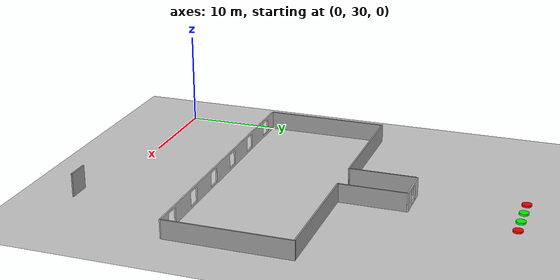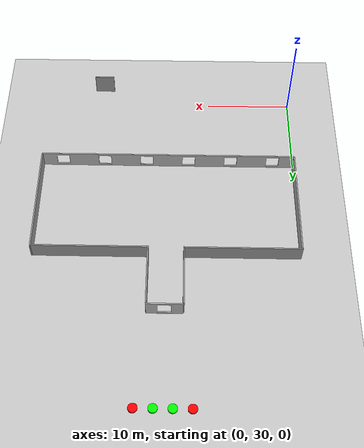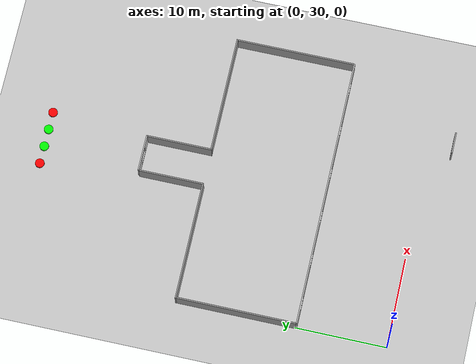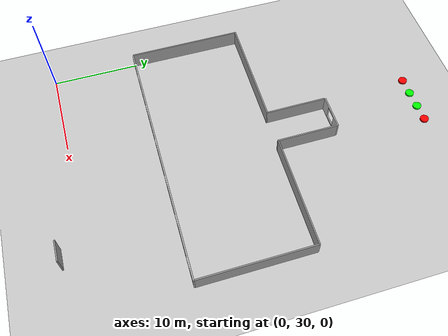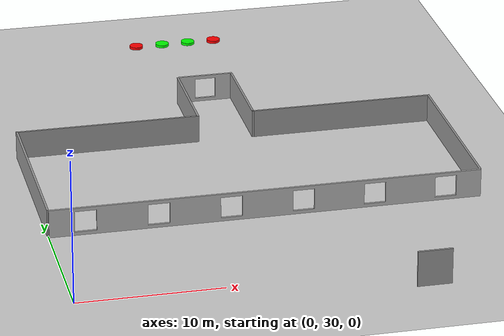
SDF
<sdf version="1.6">
 <world name="default">
  <model name="ground_plane">
   <pose>15 45 0 0 -0 0</pose>
   <static>1</static>
   <link name="link">
    <collision name="collision">
     <geometry><plane><normal>0 0 1</normal><size>100 100</size></plane></geometry>
     <surface><friction><ode><mu>100</mu><mu2>50</mu2></ode></friction></surface>
    </collision>
    <visual name="visual">
     <cast_shadows>0</cast_shadows>
     <geometry><plane><normal>0 0 1</normal><size>30 120</size></plane></geometry>
     <material>
      <script><uri>file://media/materials/scripts/gazebo.material</uri><name>Gazebo/Grey</name></script>
     </material>
    </visual>
   </link>
  </model>
  <model name="red">
   <static>1</static>
   <link name="link">
    <visual name="visual"><geometry><mesh><uri>model://red/meshes/red.dae</uri></mesh></geometry></visual>
   </link>
   <pose>12 71 0.15 0 -0 0</pose>
  </model>
  <model name="red_5">
   <static>1</static>
   <link name="link">
    <visual name="visual"><geometry><mesh><uri>model://red/meshes/red.dae</uri></mesh></geometry></visual>
   </link>
   <pose>18 71 0.15 0 -0 0</pose>
  </model>
  <model name="green_0">
   <static>1</static>
   <link name="link">
    <visual name="visual"><geometry><mesh><uri>model://green/meshes/green.dae</uri></mesh></geometry></visual>
   </link>
   <pose>14 71 0.15 0 -0 0</pose>
  </model>
  <model name="green_3">
   <static>1</static>
   <link name="link">
    <visual name="visual"><geometry><mesh><uri>model://green/meshes/green.dae</uri></mesh></geometry></visual>
   </link>
   <pose>16 71 0.15 0 -0 0</pose>
  </model>
  <model name="barrier_0_clone_2">
   <link name="link_0">
    <inertial>
     <mass>1</mass>
     <inertia>
      <ixx>0.166667</ixx>
      <ixy>0</ixy>
      <ixz>0</ixz>
      <iyy>0.166667</iyy>
      <iyz>0</iyz>
      <izz>0.166667</izz>
     </inertia>
    </inertial>
    <pose>1e-06 1e-06 0 0 -0 0</pose>
    <visual name="visual">
     <pose>0 0 0.75 0 -0 0</pose>
     <geometry><box><size>2.35 0.15 2.5</size></box></geometry>
     <material>
      <lighting>1</lighting>
      <script><uri>file://media/materials/scripts/gazebo.material</uri><name>Gazebo/Grey</name></script>
      <shader type="pixel"><normal_map>__default__</normal_map></shader>
      <ambient>0.3 0.3 0.3 1</ambient>
      <diffuse>0.7 0.7 0.7 1</diffuse>
      <specular>0.01 0.01 0.01 1</specular>
      <emissive>0 0 0 1</emissive>
     </material>
    </visual>
    <collision name="collision">
     <pose>0 0 0.75 0 -0 0</pose>
     <geometry><box><size>2.35 0.15 2.5</size></box></geometry>
     <surface>
      <friction>
       <ode><mu>1</mu><mu2>1</mu2><fdir1>0 0 0</fdir1><slip1>0</slip1><slip2>0</slip2></ode>
       <torsional>
        <coefficient>1</coefficient>
        <patch_radius>0</patch_radius>
        <surface_radius>0</surface_radius>
        <use_patch_radius>1</use_patch_radius>
        <ode><slip>0</slip></ode>
       </torsional>
      </friction>
      <bounce><restitution_coefficient>0</restitution_coefficient><threshold>1e+06</threshold></bounce>
      <contact>
       <collide_without_contact>0</collide_without_contact>
       <collide_without_contact_bitmask>1</collide_without_contact_bitmask>
       <collide_bitmask>1</collide_bitmask>
       <ode>
        <soft_cfm>0</soft_cfm>
        <soft_erp>0.2</soft_erp>
        <kp>1e+13</kp>
        <kd>1</kd>
        <max_vel>0.01</max_vel>
        <min_depth>0</min_depth>
       </ode>
       <bullet>
        <split_impulse>1</split_impulse>
        <split_impulse_penetration_threshold>-0.01</split_impulse_penetration_threshold>
        <soft_cfm>0</soft_cfm>
        <soft_erp>0.2</soft_erp>
        <kp>1e+13</kp>
        <kd>1</kd>
       </bullet>
      </contact>
     </surface>
    </collision>
   </link>
   <static>0</static>
   <pose>23.26 27.4936 0.500011 0.000117 -1e-06 -0.000796</pose>
  </model>
  <model name="task2_0">
   <pose>15 50 0 0 -0 1.57</pose>
   <link name="Wall_0">
    <collision name="Wall_0_Collision">
     <geometry><box><size>13.15 0.15 2</size></box></geometry>
     <pose>0 0 1 0 -0 0</pose>
    </collision>
    <visual name="Wall_0_Visual">
     <pose>0 0 1 0 -0 0</pose>
     <geometry><box><size>13.15 0.15 2</size></box></geometry>
     <material>
      <script><uri>file://media/materials/scripts/gazebo.material</uri><name>Gazebo/Grey</name></script>
      <ambient>1 1 1 1</ambient>
     </material>
     <meta><layer>0</layer></meta>
    </visual>
    <pose>-3.5 15 0 0 -0 0</pose>
   </link>
   <link name="Wall_1">
    <collision name="Wall_1_Collision">
     <geometry><box><size>13.15 0.15 2</size></box></geometry>
     <pose>0 0 1 0 -0 0</pose>
    </collision>
    <visual name="Wall_1_Visual">
     <pose>0 0 1 0 -0 0</pose>
     <geometry><box><size>13.15 0.15 2</size></box></geometry>
     <material>
      <script><uri>file://media/materials/scripts/gazebo.material</uri><name>Gazebo/Grey</name></script>
      <ambient>1 1 1 1</ambient>
     </material>
     <meta><layer>0</layer></meta>
    </visual>
    <pose>3 8.5 0 0 -0 -1.5708</pose>
   </link>
   <link name="Wall_2">
    <collision name="Wall_2_Collision">
     <geometry><box><size>7.15 0.15 2</size></box></geometry>
     <pose>0 0 1 0 -0 0</pose>
    </collision>
    <visual name="Wall_2_Visual">
     <pose>0 0 1 0 -0 0</pose>
     <geometry><box><size>7.15 0.15 2</size></box></geometry>
     <material>
      <script><uri>file://media/materials/scripts/gazebo.material</uri><name>Gazebo/Grey</name></script>
      <ambient>1 1 1 1</ambient>
     </material>
     <meta><layer>0</layer></meta>
    </visual>
    <pose>6.5 2 0 0 -0 0</pose>
   </link>
   <link name="Wall_4">
    <collision name="Wall_4_Collision">
     <geometry><box><size>7.15 0.15 2</size></box></geometry>
     <pose>0 0 1 0 -0 0</pose>
    </collision>
    <visual name="Wall_4_Visual">
     <pose>0 0 1 0 -0 0</pose>
     <geometry><box><size>7.15 0.15 2</size></box></geometry>
     <material>
      <script><uri>file://media/materials/scripts/gazebo.material</uri><name>Gazebo/Grey</name></script>
      <ambient>1 1 1 1</ambient>
     </material>
     <meta><layer>0</layer></meta>
    </visual>
    <pose>6.5 -2 0 0 -0 3.14159</pose>
   </link>
   <link name="Wall_5">
    <collision name="Wall_5_Collision">
     <geometry><box><size>13.15 0.15 2</size></box></geometry>
     <pose>0 0 1 0 -0 0</pose>
    </collision>
    <visual name="Wall_5_Visual">
     <pose>0 0 1 0 -0 0</pose>
     <geometry><box><size>13.15 0.15 2</size></box></geometry>
     <material>
      <script><uri>file://media/materials/scripts/gazebo.material</uri><name>Gazebo/Grey</name></script>
      <ambient>1 1 1 1</ambient>
     </material>
     <meta><layer>0</layer></meta>
    </visual>
    <pose>3 -8.5 0 0 -0 -1.5708</pose>
   </link>
   <link name="Wall_6">
    <collision name="Wall_6_Collision">
     <geometry><box><size>13.15 0.15 2</size></box></geometry>
     <pose>0 0 1 0 -0 0</pose>
    </collision>
    <visual name="Wall_6_Visual">
     <pose>0 0 1 0 -0 0</pose>
     <geometry><box><size>13.15 0.15 2</size></box></geometry>
     <material>
      <script><uri>file://media/materials/scripts/gazebo.material</uri><name>Gazebo/Grey</name></script>
      <ambient>1 1 1 1</ambient>
     </material>
     <meta><layer>0</layer></meta>
    </visual>
    <pose>-3.5 -15 0 0 -0 3.14159</pose>
   </link>
   <static>1</static>
  </model>
  <model name="front">
   <static>1</static>
   <link name="link">
    <visual name="visual"><geometry><mesh><uri>model://front/meshes/front.dae</uri></mesh></geometry></visual>
   </link>
   <pose>29.15 39.85 1 0 -0 1.57</pose>
  </model>
  <model name="behind">
   <static>1</static>
   <link name="link">
    <visual name="visual"><geometry><mesh><uri>model://behind/meshes/behind.dae</uri></mesh></geometry></visual>
   </link>
   <pose>16.425 60.15 1 0 -0 1.57</pose>
  </model>
 </world>
</sdf>
